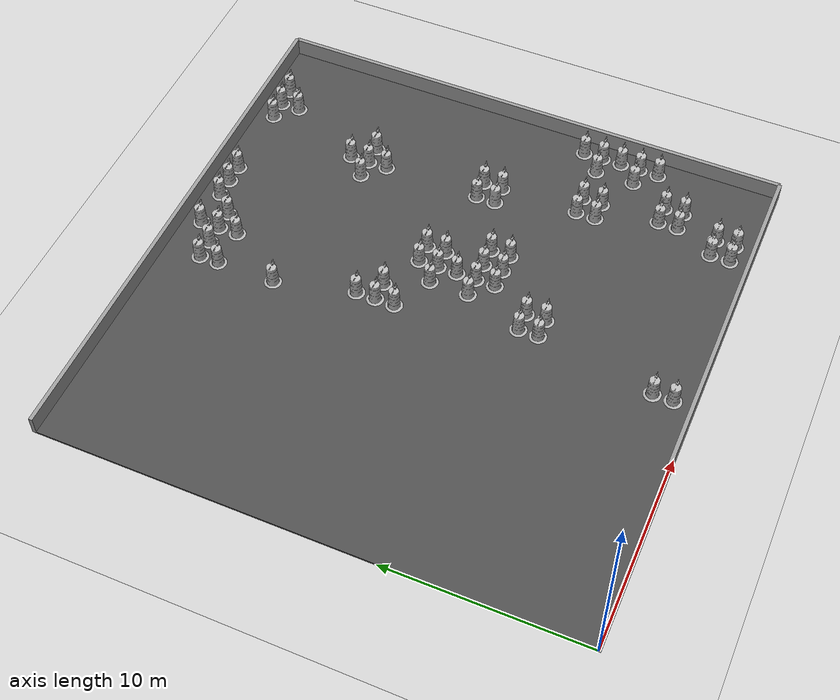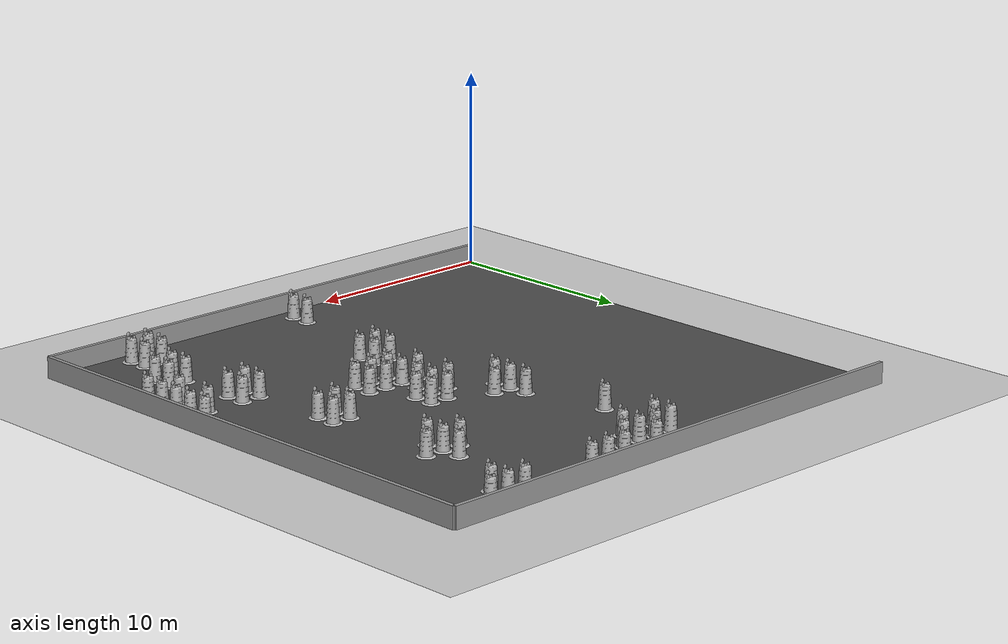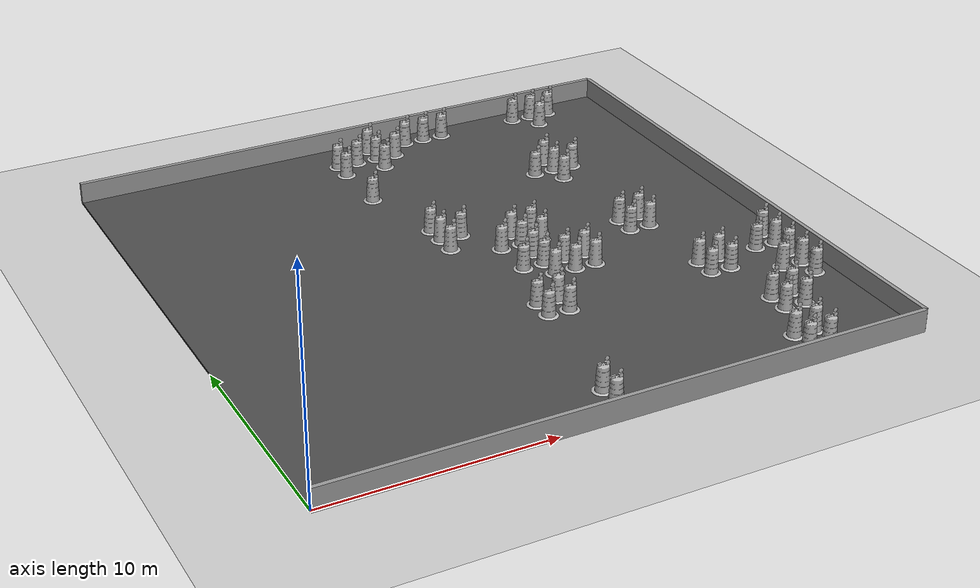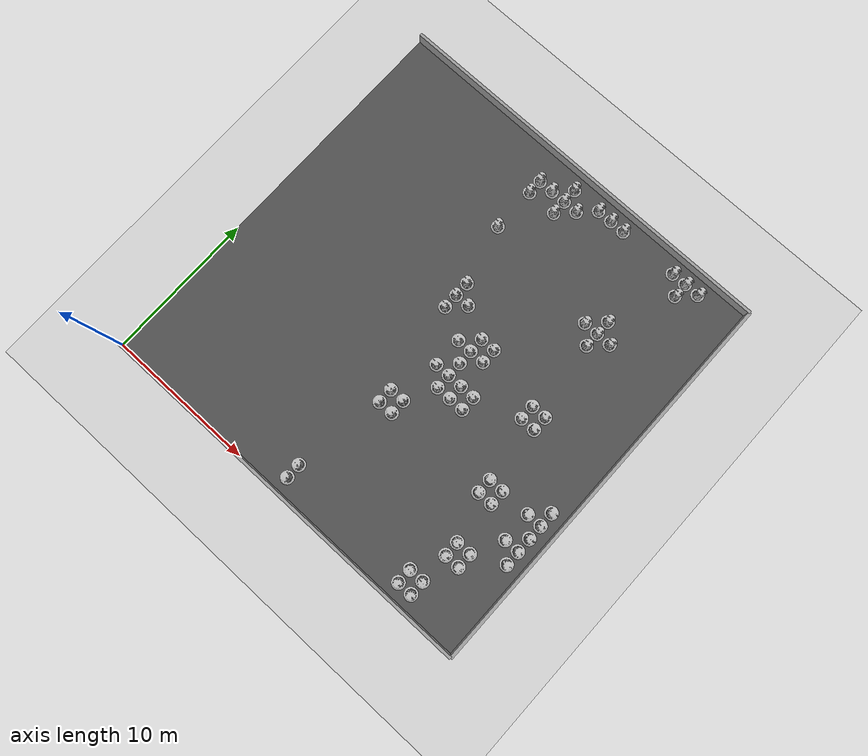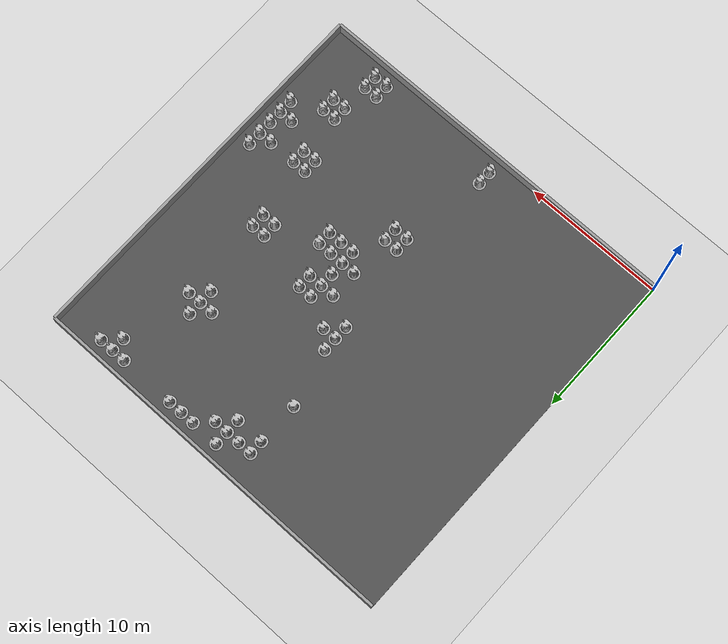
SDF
<sdf version="1.4">
 <world name="default">
  <include><uri>model://ground_plane</uri></include>
  <include><uri>model://sun</uri></include>
  <model name="grey_wall">
   <static>1</static>
   <link name="link">
    <visual name="visual">
     <cast_shadows>0</cast_shadows>
     <geometry><box><size>27 0.2 2</size></box></geometry>
     <material>
      <script>
       <uri>model://grey_wall/materials/scripts</uri>
       <uri>model://grey_wall/materials/textures</uri>
       <name>vrc/grey_wall</name>
      </script>
     </material>
    </visual>
   </link>
   <pose>13.5 0 0 0 0 0</pose>
  </model>
  <model name="grey_wall">
   <static>1</static>
   <link name="link">
    <visual name="visual">
     <cast_shadows>0</cast_shadows>
     <geometry><box><size>27 0.2 2</size></box></geometry>
     <material>
      <script>
       <uri>model://grey_wall/materials/scripts</uri>
       <uri>model://grey_wall/materials/textures</uri>
       <name>vrc/grey_wall</name>
      </script>
     </material>
    </visual>
   </link>
   <pose>27 13.5 0 0 0 -1.57079632679</pose>
  </model>
  <model name="grey_wall">
   <static>1</static>
   <link name="link">
    <visual name="visual">
     <cast_shadows>0</cast_shadows>
     <geometry><box><size>27 0.2 2</size></box></geometry>
     <material>
      <script>
       <uri>model://grey_wall/materials/scripts</uri>
       <uri>model://grey_wall/materials/textures</uri>
       <name>vrc/grey_wall</name>
      </script>
     </material>
    </visual>
   </link>
   <pose>13.5 27 0 0 0 3.14159265359</pose>
  </model>
  <model name="asphalt_plane">
   <static>1</static>
   <link name="link">
    <visual name="visual">
     <cast_shadows>0</cast_shadows>
     <geometry><box><size>27 27 0.1</size></box></geometry>
     <material>
      <script>
       <uri>model://asphalt_plane/materials/scripts</uri>
       <uri>model://asphalt_plane/materials/textures</uri>
       <name>vrc/asphalt</name>
      </script>
     </material>
    </visual>
   </link>
   <pose>13.5 13.5 0 0 0 0</pose>
  </model>
  <model name="Construction Barrel">
   <link name="link">
    <collision name="collision">
     <geometry>
      <mesh><uri>model://construction_barrel/meshes/construction_barrel.dae</uri><scale>1 1 1</scale></mesh>
     </geometry>
    </collision>
    <visual name="visual">
     <geometry><mesh><uri>model://construction_barrel/meshes/construction_barrel.dae</uri></mesh></geometry>
    </visual>
   </link>
   <pose>12 21 0 0 0 0</pose>
   <static>1</static>
  </model>
  <model name="Construction Barrel">
   <link name="link">
    <collision name="collision">
     <geometry>
      <mesh><uri>model://construction_barrel/meshes/construction_barrel.dae</uri><scale>1 1 1</scale></mesh>
     </geometry>
    </collision>
    <visual name="visual">
     <geometry><mesh><uri>model://construction_barrel/meshes/construction_barrel.dae</uri></mesh></geometry>
    </visual>
   </link>
   <pose>12 24 0 0 0 0</pose>
   <static>1</static>
  </model>
  <model name="Construction Barrel">
   <link name="link">
    <collision name="collision">
     <geometry>
      <mesh><uri>model://construction_barrel/meshes/construction_barrel.dae</uri><scale>1 1 1</scale></mesh>
     </geometry>
    </collision>
    <visual name="visual">
     <geometry><mesh><uri>model://construction_barrel/meshes/construction_barrel.dae</uri></mesh></geometry>
    </visual>
   </link>
   <pose>12 25 0 0 0 0</pose>
   <static>1</static>
  </model>
  <model name="Construction Barrel">
   <link name="link">
    <collision name="collision">
     <geometry>
      <mesh><uri>model://construction_barrel/meshes/construction_barrel.dae</uri><scale>1 1 1</scale></mesh>
     </geometry>
    </collision>
    <visual name="visual">
     <geometry><mesh><uri>model://construction_barrel/meshes/construction_barrel.dae</uri></mesh></geometry>
    </visual>
   </link>
   <pose>13 1 0 0 0 0</pose>
   <static>1</static>
  </model>
  <model name="Construction Barrel">
   <link name="link">
    <collision name="collision">
     <geometry>
      <mesh><uri>model://construction_barrel/meshes/construction_barrel.dae</uri><scale>1 1 1</scale></mesh>
     </geometry>
    </collision>
    <visual name="visual">
     <geometry><mesh><uri>model://construction_barrel/meshes/construction_barrel.dae</uri></mesh></geometry>
    </visual>
   </link>
   <pose>13 2 0 0 0 0</pose>
   <static>1</static>
  </model>
  <model name="Construction Barrel">
   <link name="link">
    <collision name="collision">
     <geometry>
      <mesh><uri>model://construction_barrel/meshes/construction_barrel.dae</uri><scale>1 1 1</scale></mesh>
     </geometry>
    </collision>
    <visual name="visual">
     <geometry><mesh><uri>model://construction_barrel/meshes/construction_barrel.dae</uri></mesh></geometry>
    </visual>
   </link>
   <pose>13 15 0 0 0 0</pose>
   <static>1</static>
  </model>
  <model name="Construction Barrel">
   <link name="link">
    <collision name="collision">
     <geometry>
      <mesh><uri>model://construction_barrel/meshes/construction_barrel.dae</uri><scale>1 1 1</scale></mesh>
     </geometry>
    </collision>
    <visual name="visual">
     <geometry><mesh><uri>model://construction_barrel/meshes/construction_barrel.dae</uri></mesh></geometry>
    </visual>
   </link>
   <pose>13 16 0 0 0 0</pose>
   <static>1</static>
  </model>
  <model name="Construction Barrel">
   <link name="link">
    <collision name="collision">
     <geometry>
      <mesh><uri>model://construction_barrel/meshes/construction_barrel.dae</uri><scale>1 1 1</scale></mesh>
     </geometry>
    </collision>
    <visual name="visual">
     <geometry><mesh><uri>model://construction_barrel/meshes/construction_barrel.dae</uri></mesh></geometry>
    </visual>
   </link>
   <pose>13 17 0 0 0 0</pose>
   <static>1</static>
  </model>
  <model name="Construction Barrel">
   <link name="link">
    <collision name="collision">
     <geometry>
      <mesh><uri>model://construction_barrel/meshes/construction_barrel.dae</uri><scale>1 1 1</scale></mesh>
     </geometry>
    </collision>
    <visual name="visual">
     <geometry><mesh><uri>model://construction_barrel/meshes/construction_barrel.dae</uri></mesh></geometry>
    </visual>
   </link>
   <pose>13 25 0 0 0 0</pose>
   <static>1</static>
  </model>
  <model name="Construction Barrel">
   <link name="link">
    <collision name="collision">
     <geometry>
      <mesh><uri>model://construction_barrel/meshes/construction_barrel.dae</uri><scale>1 1 1</scale></mesh>
     </geometry>
    </collision>
    <visual name="visual">
     <geometry><mesh><uri>model://construction_barrel/meshes/construction_barrel.dae</uri></mesh></geometry>
    </visual>
   </link>
   <pose>14 8 0 0 0 0</pose>
   <static>1</static>
  </model>
  <model name="Construction Barrel">
   <link name="link">
    <collision name="collision">
     <geometry>
      <mesh><uri>model://construction_barrel/meshes/construction_barrel.dae</uri><scale>1 1 1</scale></mesh>
     </geometry>
    </collision>
    <visual name="visual">
     <geometry><mesh><uri>model://construction_barrel/meshes/construction_barrel.dae</uri></mesh></geometry>
    </visual>
   </link>
   <pose>14 9 0 0 0 0</pose>
   <static>1</static>
  </model>
  <model name="Construction Barrel">
   <link name="link">
    <collision name="collision">
     <geometry>
      <mesh><uri>model://construction_barrel/meshes/construction_barrel.dae</uri><scale>1 1 1</scale></mesh>
     </geometry>
    </collision>
    <visual name="visual">
     <geometry><mesh><uri>model://construction_barrel/meshes/construction_barrel.dae</uri></mesh></geometry>
    </visual>
   </link>
   <pose>14 16 0 0 0 0</pose>
   <static>1</static>
  </model>
  <model name="Construction Barrel">
   <link name="link">
    <collision name="collision">
     <geometry>
      <mesh><uri>model://construction_barrel/meshes/construction_barrel.dae</uri><scale>1 1 1</scale></mesh>
     </geometry>
    </collision>
    <visual name="visual">
     <geometry><mesh><uri>model://construction_barrel/meshes/construction_barrel.dae</uri></mesh></geometry>
    </visual>
   </link>
   <pose>14 24 0 0 0 0</pose>
   <static>1</static>
  </model>
  <model name="Construction Barrel">
   <link name="link">
    <collision name="collision">
     <geometry>
      <mesh><uri>model://construction_barrel/meshes/construction_barrel.dae</uri><scale>1 1 1</scale></mesh>
     </geometry>
    </collision>
    <visual name="visual">
     <geometry><mesh><uri>model://construction_barrel/meshes/construction_barrel.dae</uri></mesh></geometry>
    </visual>
   </link>
   <pose>14 25 0 0 0 0</pose>
   <static>1</static>
  </model>
  <model name="Construction Barrel">
   <link name="link">
    <collision name="collision">
     <geometry>
      <mesh><uri>model://construction_barrel/meshes/construction_barrel.dae</uri><scale>1 1 1</scale></mesh>
     </geometry>
    </collision>
    <visual name="visual">
     <geometry><mesh><uri>model://construction_barrel/meshes/construction_barrel.dae</uri></mesh></geometry>
    </visual>
   </link>
   <pose>14 26 0 0 0 0</pose>
   <static>1</static>
  </model>
  <model name="Construction Barrel">
   <link name="link">
    <collision name="collision">
     <geometry>
      <mesh><uri>model://construction_barrel/meshes/construction_barrel.dae</uri><scale>1 1 1</scale></mesh>
     </geometry>
    </collision>
    <visual name="visual">
     <geometry><mesh><uri>model://construction_barrel/meshes/construction_barrel.dae</uri></mesh></geometry>
    </visual>
   </link>
   <pose>15 8 0 0 0 0</pose>
   <static>1</static>
  </model>
  <model name="Construction Barrel">
   <link name="link">
    <collision name="collision">
     <geometry>
      <mesh><uri>model://construction_barrel/meshes/construction_barrel.dae</uri><scale>1 1 1</scale></mesh>
     </geometry>
    </collision>
    <visual name="visual">
     <geometry><mesh><uri>model://construction_barrel/meshes/construction_barrel.dae</uri></mesh></geometry>
    </visual>
   </link>
   <pose>15 9 0 0 0 0</pose>
   <static>1</static>
  </model>
  <model name="Construction Barrel">
   <link name="link">
    <collision name="collision">
     <geometry>
      <mesh><uri>model://construction_barrel/meshes/construction_barrel.dae</uri><scale>1 1 1</scale></mesh>
     </geometry>
    </collision>
    <visual name="visual">
     <geometry><mesh><uri>model://construction_barrel/meshes/construction_barrel.dae</uri></mesh></geometry>
    </visual>
   </link>
   <pose>15 12 0 0 0 0</pose>
   <static>1</static>
  </model>
  <model name="Construction Barrel">
   <link name="link">
    <collision name="collision">
     <geometry>
      <mesh><uri>model://construction_barrel/meshes/construction_barrel.dae</uri><scale>1 1 1</scale></mesh>
     </geometry>
    </collision>
    <visual name="visual">
     <geometry><mesh><uri>model://construction_barrel/meshes/construction_barrel.dae</uri></mesh></geometry>
    </visual>
   </link>
   <pose>15 14 0 0 0 0</pose>
   <static>1</static>
  </model>
  <model name="Construction Barrel">
   <link name="link">
    <collision name="collision">
     <geometry>
      <mesh><uri>model://construction_barrel/meshes/construction_barrel.dae</uri><scale>1 1 1</scale></mesh>
     </geometry>
    </collision>
    <visual name="visual">
     <geometry><mesh><uri>model://construction_barrel/meshes/construction_barrel.dae</uri></mesh></geometry>
    </visual>
   </link>
   <pose>15 25 0 0 0 0</pose>
   <static>1</static>
  </model>
  <model name="Construction Barrel">
   <link name="link">
    <collision name="collision">
     <geometry>
      <mesh><uri>model://construction_barrel/meshes/construction_barrel.dae</uri><scale>1 1 1</scale></mesh>
     </geometry>
    </collision>
    <visual name="visual">
     <geometry><mesh><uri>model://construction_barrel/meshes/construction_barrel.dae</uri></mesh></geometry>
    </visual>
   </link>
   <pose>16 11 0 0 0 0</pose>
   <static>1</static>
  </model>
  <model name="Construction Barrel">
   <link name="link">
    <collision name="collision">
     <geometry>
      <mesh><uri>model://construction_barrel/meshes/construction_barrel.dae</uri><scale>1 1 1</scale></mesh>
     </geometry>
    </collision>
    <visual name="visual">
     <geometry><mesh><uri>model://construction_barrel/meshes/construction_barrel.dae</uri></mesh></geometry>
    </visual>
   </link>
   <pose>16 12 0 0 0 0</pose>
   <static>1</static>
  </model>
  <model name="Construction Barrel">
   <link name="link">
    <collision name="collision">
     <geometry>
      <mesh><uri>model://construction_barrel/meshes/construction_barrel.dae</uri><scale>1 1 1</scale></mesh>
     </geometry>
    </collision>
    <visual name="visual">
     <geometry><mesh><uri>model://construction_barrel/meshes/construction_barrel.dae</uri></mesh></geometry>
    </visual>
   </link>
   <pose>16 13 0 0 0 0</pose>
   <static>1</static>
  </model>
  <model name="Construction Barrel">
   <link name="link">
    <collision name="collision">
     <geometry>
      <mesh><uri>model://construction_barrel/meshes/construction_barrel.dae</uri><scale>1 1 1</scale></mesh>
     </geometry>
    </collision>
    <visual name="visual">
     <geometry><mesh><uri>model://construction_barrel/meshes/construction_barrel.dae</uri></mesh></geometry>
    </visual>
   </link>
   <pose>16 14 0 0 0 0</pose>
   <static>1</static>
  </model>
  <model name="Construction Barrel">
   <link name="link">
    <collision name="collision">
     <geometry>
      <mesh><uri>model://construction_barrel/meshes/construction_barrel.dae</uri><scale>1 1 1</scale></mesh>
     </geometry>
    </collision>
    <visual name="visual">
     <geometry><mesh><uri>model://construction_barrel/meshes/construction_barrel.dae</uri></mesh></geometry>
    </visual>
   </link>
   <pose>16 15 0 0 0 0</pose>
   <static>1</static>
  </model>
  <model name="Construction Barrel">
   <link name="link">
    <collision name="collision">
     <geometry>
      <mesh><uri>model://construction_barrel/meshes/construction_barrel.dae</uri><scale>1 1 1</scale></mesh>
     </geometry>
    </collision>
    <visual name="visual">
     <geometry><mesh><uri>model://construction_barrel/meshes/construction_barrel.dae</uri></mesh></geometry>
    </visual>
   </link>
   <pose>16 26 0 0 0 0</pose>
   <static>1</static>
  </model>
  <model name="Construction Barrel">
   <link name="link">
    <collision name="collision">
     <geometry>
      <mesh><uri>model://construction_barrel/meshes/construction_barrel.dae</uri><scale>1 1 1</scale></mesh>
     </geometry>
    </collision>
    <visual name="visual">
     <geometry><mesh><uri>model://construction_barrel/meshes/construction_barrel.dae</uri></mesh></geometry>
    </visual>
   </link>
   <pose>17 11 0 0 0 0</pose>
   <static>1</static>
  </model>
  <model name="Construction Barrel">
   <link name="link">
    <collision name="collision">
     <geometry>
      <mesh><uri>model://construction_barrel/meshes/construction_barrel.dae</uri><scale>1 1 1</scale></mesh>
     </geometry>
    </collision>
    <visual name="visual">
     <geometry><mesh><uri>model://construction_barrel/meshes/construction_barrel.dae</uri></mesh></geometry>
    </visual>
   </link>
   <pose>17 12 0 0 0 0</pose>
   <static>1</static>
  </model>
  <model name="Construction Barrel">
   <link name="link">
    <collision name="collision">
     <geometry>
      <mesh><uri>model://construction_barrel/meshes/construction_barrel.dae</uri><scale>1 1 1</scale></mesh>
     </geometry>
    </collision>
    <visual name="visual">
     <geometry><mesh><uri>model://construction_barrel/meshes/construction_barrel.dae</uri></mesh></geometry>
    </visual>
   </link>
   <pose>17 14 0 0 0 0</pose>
   <static>1</static>
  </model>
  <model name="Construction Barrel">
   <link name="link">
    <collision name="collision">
     <geometry>
      <mesh><uri>model://construction_barrel/meshes/construction_barrel.dae</uri><scale>1 1 1</scale></mesh>
     </geometry>
    </collision>
    <visual name="visual">
     <geometry><mesh><uri>model://construction_barrel/meshes/construction_barrel.dae</uri></mesh></geometry>
    </visual>
   </link>
   <pose>17 15 0 0 0 0</pose>
   <static>1</static>
  </model>
  <model name="Construction Barrel">
   <link name="link">
    <collision name="collision">
     <geometry>
      <mesh><uri>model://construction_barrel/meshes/construction_barrel.dae</uri><scale>1 1 1</scale></mesh>
     </geometry>
    </collision>
    <visual name="visual">
     <geometry><mesh><uri>model://construction_barrel/meshes/construction_barrel.dae</uri></mesh></geometry>
    </visual>
   </link>
   <pose>17 26 0 0 0 0</pose>
   <static>1</static>
  </model>
  <model name="Construction Barrel">
   <link name="link">
    <collision name="collision">
     <geometry>
      <mesh><uri>model://construction_barrel/meshes/construction_barrel.dae</uri><scale>1 1 1</scale></mesh>
     </geometry>
    </collision>
    <visual name="visual">
     <geometry><mesh><uri>model://construction_barrel/meshes/construction_barrel.dae</uri></mesh></geometry>
    </visual>
   </link>
   <pose>18 11 0 0 0 0</pose>
   <static>1</static>
  </model>
  <model name="Construction Barrel">
   <link name="link">
    <collision name="collision">
     <geometry>
      <mesh><uri>model://construction_barrel/meshes/construction_barrel.dae</uri><scale>1 1 1</scale></mesh>
     </geometry>
    </collision>
    <visual name="visual">
     <geometry><mesh><uri>model://construction_barrel/meshes/construction_barrel.dae</uri></mesh></geometry>
    </visual>
   </link>
   <pose>18 12 0 0 0 0</pose>
   <static>1</static>
  </model>
  <model name="Construction Barrel">
   <link name="link">
    <collision name="collision">
     <geometry>
      <mesh><uri>model://construction_barrel/meshes/construction_barrel.dae</uri><scale>1 1 1</scale></mesh>
     </geometry>
    </collision>
    <visual name="visual">
     <geometry><mesh><uri>model://construction_barrel/meshes/construction_barrel.dae</uri></mesh></geometry>
    </visual>
   </link>
   <pose>18 26 0 0 0 0</pose>
   <static>1</static>
  </model>
  <model name="Construction Barrel">
   <link name="link">
    <collision name="collision">
     <geometry>
      <mesh><uri>model://construction_barrel/meshes/construction_barrel.dae</uri><scale>1 1 1</scale></mesh>
     </geometry>
    </collision>
    <visual name="visual">
     <geometry><mesh><uri>model://construction_barrel/meshes/construction_barrel.dae</uri></mesh></geometry>
    </visual>
   </link>
   <pose>20 20 0 0 0 0</pose>
   <static>1</static>
  </model>
  <model name="Construction Barrel">
   <link name="link">
    <collision name="collision">
     <geometry>
      <mesh><uri>model://construction_barrel/meshes/construction_barrel.dae</uri><scale>1 1 1</scale></mesh>
     </geometry>
    </collision>
    <visual name="visual">
     <geometry><mesh><uri>model://construction_barrel/meshes/construction_barrel.dae</uri></mesh></geometry>
    </visual>
   </link>
   <pose>21 13 0 0 0 0</pose>
   <static>1</static>
  </model>
  <model name="Construction Barrel">
   <link name="link">
    <collision name="collision">
     <geometry>
      <mesh><uri>model://construction_barrel/meshes/construction_barrel.dae</uri><scale>1 1 1</scale></mesh>
     </geometry>
    </collision>
    <visual name="visual">
     <geometry><mesh><uri>model://construction_barrel/meshes/construction_barrel.dae</uri></mesh></geometry>
    </visual>
   </link>
   <pose>21 14 0 0 0 0</pose>
   <static>1</static>
  </model>
  <model name="Construction Barrel">
   <link name="link">
    <collision name="collision">
     <geometry>
      <mesh><uri>model://construction_barrel/meshes/construction_barrel.dae</uri><scale>1 1 1</scale></mesh>
     </geometry>
    </collision>
    <visual name="visual">
     <geometry><mesh><uri>model://construction_barrel/meshes/construction_barrel.dae</uri></mesh></geometry>
    </visual>
   </link>
   <pose>21 19 0 0 0 0</pose>
   <static>1</static>
  </model>
  <model name="Construction Barrel">
   <link name="link">
    <collision name="collision">
     <geometry>
      <mesh><uri>model://construction_barrel/meshes/construction_barrel.dae</uri><scale>1 1 1</scale></mesh>
     </geometry>
    </collision>
    <visual name="visual">
     <geometry><mesh><uri>model://construction_barrel/meshes/construction_barrel.dae</uri></mesh></geometry>
    </visual>
   </link>
   <pose>21 20 0 0 0 0</pose>
   <static>1</static>
  </model>
  <model name="Construction Barrel">
   <link name="link">
    <collision name="collision">
     <geometry>
      <mesh><uri>model://construction_barrel/meshes/construction_barrel.dae</uri><scale>1 1 1</scale></mesh>
     </geometry>
    </collision>
    <visual name="visual">
     <geometry><mesh><uri>model://construction_barrel/meshes/construction_barrel.dae</uri></mesh></geometry>
    </visual>
   </link>
   <pose>21 21 0 0 0 0</pose>
   <static>1</static>
  </model>
  <model name="Construction Barrel">
   <link name="link">
    <collision name="collision">
     <geometry>
      <mesh><uri>model://construction_barrel/meshes/construction_barrel.dae</uri><scale>1 1 1</scale></mesh>
     </geometry>
    </collision>
    <visual name="visual">
     <geometry><mesh><uri>model://construction_barrel/meshes/construction_barrel.dae</uri></mesh></geometry>
    </visual>
   </link>
   <pose>22 1 0 0 0 0</pose>
   <static>1</static>
  </model>
  <model name="Construction Barrel">
   <link name="link">
    <collision name="collision">
     <geometry>
      <mesh><uri>model://construction_barrel/meshes/construction_barrel.dae</uri><scale>1 1 1</scale></mesh>
     </geometry>
    </collision>
    <visual name="visual">
     <geometry><mesh><uri>model://construction_barrel/meshes/construction_barrel.dae</uri></mesh></geometry>
    </visual>
   </link>
   <pose>22 2 0 0 0 0</pose>
   <static>1</static>
  </model>
  <model name="Construction Barrel">
   <link name="link">
    <collision name="collision">
     <geometry>
      <mesh><uri>model://construction_barrel/meshes/construction_barrel.dae</uri><scale>1 1 1</scale></mesh>
     </geometry>
    </collision>
    <visual name="visual">
     <geometry><mesh><uri>model://construction_barrel/meshes/construction_barrel.dae</uri></mesh></geometry>
    </visual>
   </link>
   <pose>22 8 0 0 0 0</pose>
   <static>1</static>
  </model>
  <model name="Construction Barrel">
   <link name="link">
    <collision name="collision">
     <geometry>
      <mesh><uri>model://construction_barrel/meshes/construction_barrel.dae</uri><scale>1 1 1</scale></mesh>
     </geometry>
    </collision>
    <visual name="visual">
     <geometry><mesh><uri>model://construction_barrel/meshes/construction_barrel.dae</uri></mesh></geometry>
    </visual>
   </link>
   <pose>22 9 0 0 0 0</pose>
   <static>1</static>
  </model>
  <model name="Construction Barrel">
   <link name="link">
    <collision name="collision">
     <geometry>
      <mesh><uri>model://construction_barrel/meshes/construction_barrel.dae</uri><scale>1 1 1</scale></mesh>
     </geometry>
    </collision>
    <visual name="visual">
     <geometry><mesh><uri>model://construction_barrel/meshes/construction_barrel.dae</uri></mesh></geometry>
    </visual>
   </link>
   <pose>22 13 0 0 0 0</pose>
   <static>1</static>
  </model>
  <model name="Construction Barrel">
   <link name="link">
    <collision name="collision">
     <geometry>
      <mesh><uri>model://construction_barrel/meshes/construction_barrel.dae</uri><scale>1 1 1</scale></mesh>
     </geometry>
    </collision>
    <visual name="visual">
     <geometry><mesh><uri>model://construction_barrel/meshes/construction_barrel.dae</uri></mesh></geometry>
    </visual>
   </link>
   <pose>22 14 0 0 0 0</pose>
   <static>1</static>
  </model>
  <model name="Construction Barrel">
   <link name="link">
    <collision name="collision">
     <geometry>
      <mesh><uri>model://construction_barrel/meshes/construction_barrel.dae</uri><scale>1 1 1</scale></mesh>
     </geometry>
    </collision>
    <visual name="visual">
     <geometry><mesh><uri>model://construction_barrel/meshes/construction_barrel.dae</uri></mesh></geometry>
    </visual>
   </link>
   <pose>22 20 0 0 0 0</pose>
   <static>1</static>
  </model>
  <model name="Construction Barrel">
   <link name="link">
    <collision name="collision">
     <geometry>
      <mesh><uri>model://construction_barrel/meshes/construction_barrel.dae</uri><scale>1 1 1</scale></mesh>
     </geometry>
    </collision>
    <visual name="visual">
     <geometry><mesh><uri>model://construction_barrel/meshes/construction_barrel.dae</uri></mesh></geometry>
    </visual>
   </link>
   <pose>22 26 0 0 0 0</pose>
   <static>1</static>
  </model>
  <model name="Construction Barrel">
   <link name="link">
    <collision name="collision">
     <geometry>
      <mesh><uri>model://construction_barrel/meshes/construction_barrel.dae</uri><scale>1 1 1</scale></mesh>
     </geometry>
    </collision>
    <visual name="visual">
     <geometry><mesh><uri>model://construction_barrel/meshes/construction_barrel.dae</uri></mesh></geometry>
    </visual>
   </link>
   <pose>23 1 0 0 0 0</pose>
   <static>1</static>
  </model>
  <model name="Construction Barrel">
   <link name="link">
    <collision name="collision">
     <geometry>
      <mesh><uri>model://construction_barrel/meshes/construction_barrel.dae</uri><scale>1 1 1</scale></mesh>
     </geometry>
    </collision>
    <visual name="visual">
     <geometry><mesh><uri>model://construction_barrel/meshes/construction_barrel.dae</uri></mesh></geometry>
    </visual>
   </link>
   <pose>23 2 0 0 0 0</pose>
   <static>1</static>
  </model>
  <model name="Construction Barrel">
   <link name="link">
    <collision name="collision">
     <geometry>
      <mesh><uri>model://construction_barrel/meshes/construction_barrel.dae</uri><scale>1 1 1</scale></mesh>
     </geometry>
    </collision>
    <visual name="visual">
     <geometry><mesh><uri>model://construction_barrel/meshes/construction_barrel.dae</uri></mesh></geometry>
    </visual>
   </link>
   <pose>23 4 0 0 0 0</pose>
   <static>1</static>
  </model>
  <model name="Construction Barrel">
   <link name="link">
    <collision name="collision">
     <geometry>
      <mesh><uri>model://construction_barrel/meshes/construction_barrel.dae</uri><scale>1 1 1</scale></mesh>
     </geometry>
    </collision>
    <visual name="visual">
     <geometry><mesh><uri>model://construction_barrel/meshes/construction_barrel.dae</uri></mesh></geometry>
    </visual>
   </link>
   <pose>23 5 0 0 0 0</pose>
   <static>1</static>
  </model>
  <model name="Construction Barrel">
   <link name="link">
    <collision name="collision">
     <geometry>
      <mesh><uri>model://construction_barrel/meshes/construction_barrel.dae</uri><scale>1 1 1</scale></mesh>
     </geometry>
    </collision>
    <visual name="visual">
     <geometry><mesh><uri>model://construction_barrel/meshes/construction_barrel.dae</uri></mesh></geometry>
    </visual>
   </link>
   <pose>23 8 0 0 0 0</pose>
   <static>1</static>
  </model>
  <model name="Construction Barrel">
   <link name="link">
    <collision name="collision">
     <geometry>
      <mesh><uri>model://construction_barrel/meshes/construction_barrel.dae</uri><scale>1 1 1</scale></mesh>
     </geometry>
    </collision>
    <visual name="visual">
     <geometry><mesh><uri>model://construction_barrel/meshes/construction_barrel.dae</uri></mesh></geometry>
    </visual>
   </link>
   <pose>23 9 0 0 0 0</pose>
   <static>1</static>
  </model>
  <model name="Construction Barrel">
   <link name="link">
    <collision name="collision">
     <geometry>
      <mesh><uri>model://construction_barrel/meshes/construction_barrel.dae</uri><scale>1 1 1</scale></mesh>
     </geometry>
    </collision>
    <visual name="visual">
     <geometry><mesh><uri>model://construction_barrel/meshes/construction_barrel.dae</uri></mesh></geometry>
    </visual>
   </link>
   <pose>23 25 0 0 0 0</pose>
   <static>1</static>
  </model>
  <model name="Construction Barrel">
   <link name="link">
    <collision name="collision">
     <geometry>
      <mesh><uri>model://construction_barrel/meshes/construction_barrel.dae</uri><scale>1 1 1</scale></mesh>
     </geometry>
    </collision>
    <visual name="visual">
     <geometry><mesh><uri>model://construction_barrel/meshes/construction_barrel.dae</uri></mesh></geometry>
    </visual>
   </link>
   <pose>23 26 0 0 0 0</pose>
   <static>1</static>
  </model>
  <model name="Construction Barrel">
   <link name="link">
    <collision name="collision">
     <geometry>
      <mesh><uri>model://construction_barrel/meshes/construction_barrel.dae</uri><scale>1 1 1</scale></mesh>
     </geometry>
    </collision>
    <visual name="visual">
     <geometry><mesh><uri>model://construction_barrel/meshes/construction_barrel.dae</uri></mesh></geometry>
    </visual>
   </link>
   <pose>24 4 0 0 0 0</pose>
   <static>1</static>
  </model>
  <model name="Construction Barrel">
   <link name="link">
    <collision name="collision">
     <geometry>
      <mesh><uri>model://construction_barrel/meshes/construction_barrel.dae</uri><scale>1 1 1</scale></mesh>
     </geometry>
    </collision>
    <visual name="visual">
     <geometry><mesh><uri>model://construction_barrel/meshes/construction_barrel.dae</uri></mesh></geometry>
    </visual>
   </link>
   <pose>24 5 0 0 0 0</pose>
   <static>1</static>
  </model>
  <model name="Construction Barrel">
   <link name="link">
    <collision name="collision">
     <geometry>
      <mesh><uri>model://construction_barrel/meshes/construction_barrel.dae</uri><scale>1 1 1</scale></mesh>
     </geometry>
    </collision>
    <visual name="visual">
     <geometry><mesh><uri>model://construction_barrel/meshes/construction_barrel.dae</uri></mesh></geometry>
    </visual>
   </link>
   <pose>24 26 0 0 0 0</pose>
   <static>1</static>
  </model>
  <model name="Construction Barrel">
   <link name="link">
    <collision name="collision">
     <geometry>
      <mesh><uri>model://construction_barrel/meshes/construction_barrel.dae</uri><scale>1 1 1</scale></mesh>
     </geometry>
    </collision>
    <visual name="visual">
     <geometry><mesh><uri>model://construction_barrel/meshes/construction_barrel.dae</uri></mesh></geometry>
    </visual>
   </link>
   <pose>25 7 0 0 0 0</pose>
   <static>1</static>
  </model>
  <model name="Construction Barrel">
   <link name="link">
    <collision name="collision">
     <geometry>
      <mesh><uri>model://construction_barrel/meshes/construction_barrel.dae</uri><scale>1 1 1</scale></mesh>
     </geometry>
    </collision>
    <visual name="visual">
     <geometry><mesh><uri>model://construction_barrel/meshes/construction_barrel.dae</uri></mesh></geometry>
    </visual>
   </link>
   <pose>25 9 0 0 0 0</pose>
   <static>1</static>
  </model>
  <model name="Construction Barrel">
   <link name="link">
    <collision name="collision">
     <geometry>
      <mesh><uri>model://construction_barrel/meshes/construction_barrel.dae</uri><scale>1 1 1</scale></mesh>
     </geometry>
    </collision>
    <visual name="visual">
     <geometry><mesh><uri>model://construction_barrel/meshes/construction_barrel.dae</uri></mesh></geometry>
    </visual>
   </link>
   <pose>26 6 0 0 0 0</pose>
   <static>1</static>
  </model>
  <model name="Construction Barrel">
   <link name="link">
    <collision name="collision">
     <geometry>
      <mesh><uri>model://construction_barrel/meshes/construction_barrel.dae</uri><scale>1 1 1</scale></mesh>
     </geometry>
    </collision>
    <visual name="visual">
     <geometry><mesh><uri>model://construction_barrel/meshes/construction_barrel.dae</uri></mesh></geometry>
    </visual>
   </link>
   <pose>26 7 0 0 0 0</pose>
   <static>1</static>
  </model>
  <model name="Construction Barrel">
   <link name="link">
    <collision name="collision">
     <geometry>
      <mesh><uri>model://construction_barrel/meshes/construction_barrel.dae</uri><scale>1 1 1</scale></mesh>
     </geometry>
    </collision>
    <visual name="visual">
     <geometry><mesh><uri>model://construction_barrel/meshes/construction_barrel.dae</uri></mesh></geometry>
    </visual>
   </link>
   <pose>26 8 0 0 0 0</pose>
   <static>1</static>
  </model>
  <model name="Construction Barrel">
   <link name="link">
    <collision name="collision">
     <geometry>
      <mesh><uri>model://construction_barrel/meshes/construction_barrel.dae</uri><scale>1 1 1</scale></mesh>
     </geometry>
    </collision>
    <visual name="visual">
     <geometry><mesh><uri>model://construction_barrel/meshes/construction_barrel.dae</uri></mesh></geometry>
    </visual>
   </link>
   <pose>26 9 0 0 0 0</pose>
   <static>1</static>
  </model>
  <model name="Construction Barrel">
   <link name="link">
    <collision name="collision">
     <geometry>
      <mesh><uri>model://construction_barrel/meshes/construction_barrel.dae</uri><scale>1 1 1</scale></mesh>
     </geometry>
    </collision>
    <visual name="visual">
     <geometry><mesh><uri>model://construction_barrel/meshes/construction_barrel.dae</uri></mesh></geometry>
    </visual>
   </link>
   <pose>26 10 0 0 0 0</pose>
   <static>1</static>
  </model>
 </world>
</sdf>
